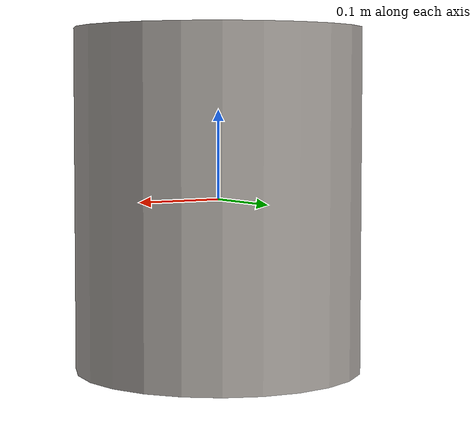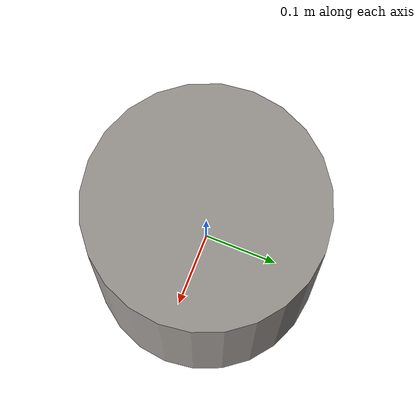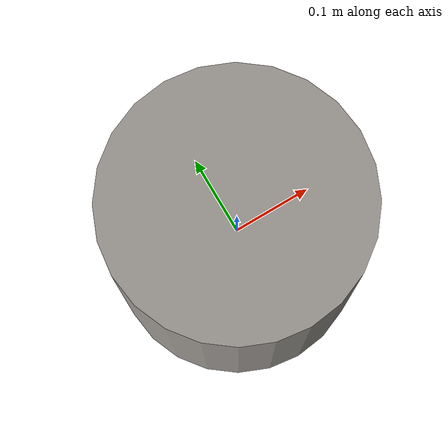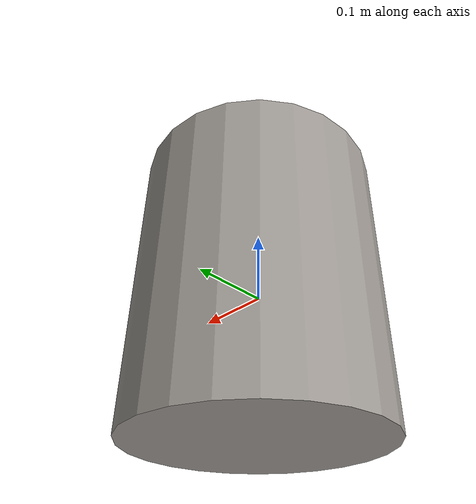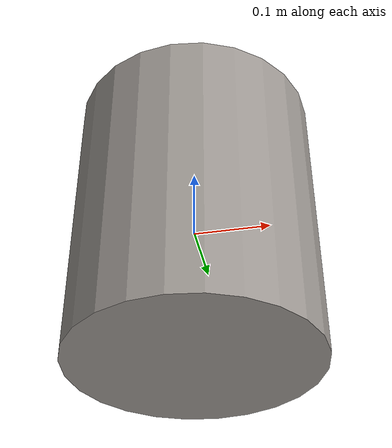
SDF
<?xml version="1.0"?>
<sdf version="1.6">
  <model name="wastebasket">
    <static>true</static>
    <link name="link">
      <collision name="col">
        <geometry>
          <cylinder>
            <radius>0.16</radius>
            <length>0.38</length>
          </cylinder>
        </geometry>
      </collision>
      <visual name="vis">
        <geometry>
          <cylinder>
            <radius>0.16</radius>
            <length>0.38</length>
          </cylinder>
        </geometry>
        <material>
          <ambient>0.62 0.6 0.58 1</ambient>
          <diffuse>0.62 0.6 0.58 1</diffuse>
        </material>
      </visual>
    </link>
  </model>
</sdf>
